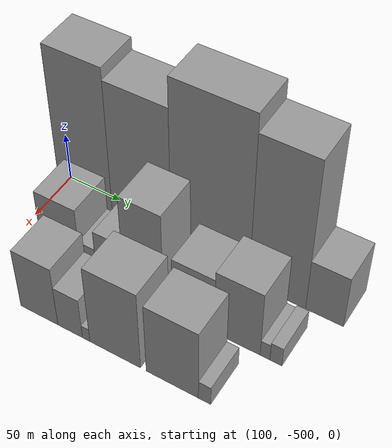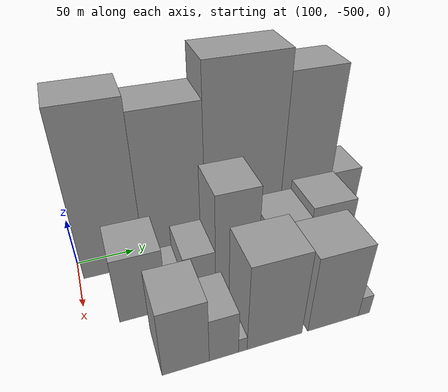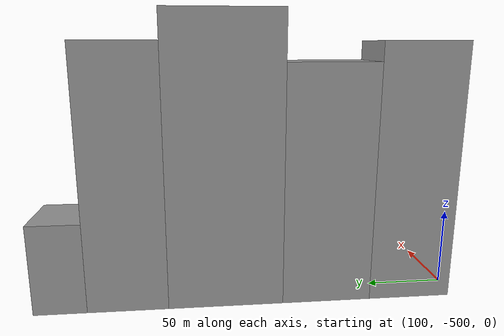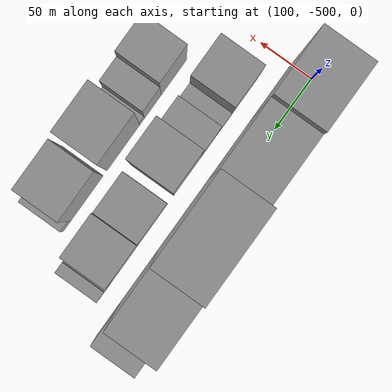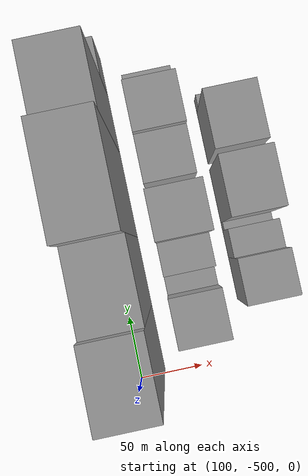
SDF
<sdf version="1.6">
 <world name="default">
  <model name="building_14">
   <static>1</static>
   <pose>100.0000 -469.8203 0 0.000000 0.000000 0.000000</pose>
   <link name="link">
    <pose>0 0 81.00 0 0 0</pose>
    <collision name="collision"><geometry><box><size>40.0000 52.8255 162.0000</size></box></geometry></collision>
    <visual name="visual">
     <cast_shadows>0</cast_shadows>
     <geometry><box><size>40.0000 52.8255 162.0000</size></box></geometry>
     <material>
      <script>
       <uri>model://grey_wall/materials/scripts</uri>
       <uri>model://grey_wall/materials/textures</uri>
       <name>vrc/grey_wall</name>
      </script>
     </material>
    </visual>
   </link>
  </model>
  <model name="building_15">
   <static>1</static>
   <pose>100.0000 -415.1986 0 0.000000 0.000000 0.000000</pose>
   <link name="link">
    <pose>0 0 75.00 0 0 0</pose>
    <collision name="collision"><geometry><box><size>40.0000 56.4179 150.0000</size></box></geometry></collision>
    <visual name="visual">
     <cast_shadows>0</cast_shadows>
     <geometry><box><size>40.0000 56.4179 150.0000</size></box></geometry>
     <material>
      <script>
       <uri>model://grey_wall/materials/scripts</uri>
       <uri>model://grey_wall/materials/textures</uri>
       <name>vrc/grey_wall</name>
      </script>
     </material>
    </visual>
   </link>
  </model>
  <model name="building_16">
   <static>1</static>
   <pose>100.0000 -351.2079 0 0.000000 0.000000 0.000000</pose>
   <link name="link">
    <pose>0 0 90.00 0 0 0</pose>
    <collision name="collision"><geometry><box><size>40.0000 71.5635 180.0000</size></box></geometry></collision>
    <visual name="visual">
     <cast_shadows>0</cast_shadows>
     <geometry><box><size>40.0000 71.5635 180.0000</size></box></geometry>
     <material>
      <script>
       <uri>model://grey_wall/materials/scripts</uri>
       <uri>model://grey_wall/materials/textures</uri>
       <name>vrc/grey_wall</name>
      </script>
     </material>
    </visual>
   </link>
  </model>
  <model name="building_17">
   <static>1</static>
   <pose>100.0000 -290.7878 0 0.000000 0.000000 0.000000</pose>
   <link name="link">
    <pose>0 0 81.00 0 0 0</pose>
    <collision name="collision"><geometry><box><size>40.0000 49.2768 162.0000</size></box></geometry></collision>
    <visual name="visual">
     <cast_shadows>0</cast_shadows>
     <geometry><box><size>40.0000 49.2768 162.0000</size></box></geometry>
     <material>
      <script>
       <uri>model://grey_wall/materials/scripts</uri>
       <uri>model://grey_wall/materials/textures</uri>
       <name>vrc/grey_wall</name>
      </script>
     </material>
    </visual>
   </link>
  </model>
  <model name="building_18">
   <static>1</static>
   <pose>100.0000 -250.1344 0 0.000000 0.000000 0.000000</pose>
   <link name="link">
    <pose>0 0 28.50 0 0 0</pose>
    <collision name="collision"><geometry><box><size>40.0000 32.0299 57.0000</size></box></geometry></collision>
    <visual name="visual">
     <cast_shadows>0</cast_shadows>
     <geometry><box><size>40.0000 32.0299 57.0000</size></box></geometry>
     <material>
      <script>
       <uri>model://grey_wall/materials/scripts</uri>
       <uri>model://grey_wall/materials/textures</uri>
       <name>vrc/grey_wall</name>
      </script>
     </material>
    </visual>
   </link>
  </model>
  <model name="building_65">
   <static>1</static>
   <pose>155.0000 -455.6357 0 0.000000 0.000000 0.000000</pose>
   <link name="link">
    <pose>0 0 33.00 0 0 0</pose>
    <collision name="collision"><geometry><box><size>40.0000 37.8774 66.0000</size></box></geometry></collision>
    <visual name="visual">
     <cast_shadows>0</cast_shadows>
     <geometry><box><size>40.0000 37.8774 66.0000</size></box></geometry>
     <material>
      <script>
       <uri>model://grey_wall/materials/scripts</uri>
       <uri>model://grey_wall/materials/textures</uri>
       <name>vrc/grey_wall</name>
      </script>
     </material>
    </visual>
   </link>
  </model>
  <model name="building_66">
   <static>1</static>
   <pose>155.0000 -429.1289 0 0.000000 0.000000 0.000000</pose>
   <link name="link">
    <pose>0 0 15.00 0 0 0</pose>
    <collision name="collision"><geometry><box><size>40.0000 15.1361 30.0000</size></box></geometry></collision>
    <visual name="visual">
     <cast_shadows>0</cast_shadows>
     <geometry><box><size>40.0000 15.1361 30.0000</size></box></geometry>
     <material>
      <script>
       <uri>model://grey_wall/materials/scripts</uri>
       <uri>model://grey_wall/materials/textures</uri>
       <name>vrc/grey_wall</name>
      </script>
     </material>
    </visual>
   </link>
  </model>
  <model name="building_67">
   <static>1</static>
   <pose>155.0000 -408.6569 0 0.000000 0.000000 0.000000</pose>
   <link name="link">
    <pose>0 0 25.50 0 0 0</pose>
    <collision name="collision"><geometry><box><size>40.0000 25.8079 51.0000</size></box></geometry></collision>
    <visual name="visual">
     <cast_shadows>0</cast_shadows>
     <geometry><box><size>40.0000 25.8079 51.0000</size></box></geometry>
     <material>
      <script>
       <uri>model://grey_wall/materials/scripts</uri>
       <uri>model://grey_wall/materials/textures</uri>
       <name>vrc/grey_wall</name>
      </script>
     </material>
    </visual>
   </link>
  </model>
  <model name="building_68">
   <static>1</static>
   <pose>155.0000 -377.7019 0 0.000000 0.000000 0.000000</pose>
   <link name="link">
    <pose>0 0 52.50 0 0 0</pose>
    <collision name="collision"><geometry><box><size>40.0000 36.1021 105.0000</size></box></geometry></collision>
    <visual name="visual">
     <cast_shadows>0</cast_shadows>
     <geometry><box><size>40.0000 36.1021 105.0000</size></box></geometry>
     <material>
      <script>
       <uri>model://grey_wall/materials/scripts</uri>
       <uri>model://grey_wall/materials/textures</uri>
       <name>vrc/grey_wall</name>
      </script>
     </material>
    </visual>
   </link>
  </model>
  <model name="building_69">
   <static>1</static>
   <pose>155.0000 -333.0927 0 0.000000 0.000000 0.000000</pose>
   <link name="link">
    <pose>0 0 31.50 0 0 0</pose>
    <collision name="collision"><geometry><box><size>40.0000 37.1162 63.0000</size></box></geometry></collision>
    <visual name="visual">
     <cast_shadows>0</cast_shadows>
     <geometry><box><size>40.0000 37.1162 63.0000</size></box></geometry>
     <material>
      <script>
       <uri>model://grey_wall/materials/scripts</uri>
       <uri>model://grey_wall/materials/textures</uri>
       <name>vrc/grey_wall</name>
      </script>
     </material>
    </visual>
   </link>
  </model>
  <model name="building_70">
   <static>1</static>
   <pose>155.0000 -295.0050 0 0.000000 0.000000 0.000000</pose>
   <link name="link">
    <pose>0 0 36.00 0 0 0</pose>
    <collision name="collision"><geometry><box><size>40.0000 39.0592 72.0000</size></box></geometry></collision>
    <visual name="visual">
     <cast_shadows>0</cast_shadows>
     <geometry><box><size>40.0000 39.0592 72.0000</size></box></geometry>
     <material>
      <script>
       <uri>model://grey_wall/materials/scripts</uri>
       <uri>model://grey_wall/materials/textures</uri>
       <name>vrc/grey_wall</name>
      </script>
     </material>
    </visual>
   </link>
  </model>
  <model name="building_71">
   <static>1</static>
   <pose>155.0000 -271.3740 0 0.000000 0.000000 0.000000</pose>
   <link name="link">
    <pose>0 0 9.00 0 0 0</pose>
    <collision name="collision"><geometry><box><size>40.0000 8.2028 18.0000</size></box></geometry></collision>
    <visual name="visual">
     <cast_shadows>0</cast_shadows>
     <geometry><box><size>40.0000 8.2028 18.0000</size></box></geometry>
     <material>
      <script>
       <uri>model://grey_wall/materials/scripts</uri>
       <uri>model://grey_wall/materials/textures</uri>
       <name>vrc/grey_wall</name>
      </script>
     </material>
    </visual>
   </link>
  </model>
  <model name="building_72">
   <static>1</static>
   <pose>155.0000 -262.2273 0 0.000000 0.000000 0.000000</pose>
   <link name="link">
    <pose>0 0 10.50 0 0 0</pose>
    <collision name="collision"><geometry><box><size>40.0000 10.0905 21.0000</size></box></geometry></collision>
    <visual name="visual">
     <cast_shadows>0</cast_shadows>
     <geometry><box><size>40.0000 10.0905 21.0000</size></box></geometry>
     <material>
      <script>
       <uri>model://grey_wall/materials/scripts</uri>
       <uri>model://grey_wall/materials/textures</uri>
       <name>vrc/grey_wall</name>
      </script>
     </material>
    </visual>
   </link>
  </model>
  <model name="building_117">
   <static>1</static>
   <pose>210.0000 -436.3825 0 0.000000 0.000000 0.000000</pose>
   <link name="link">
    <pose>0 0 33.00 0 0 0</pose>
    <collision name="collision"><geometry><box><size>40.0000 34.8083 66.0000</size></box></geometry></collision>
    <visual name="visual">
     <cast_shadows>0</cast_shadows>
     <geometry><box><size>40.0000 34.8083 66.0000</size></box></geometry>
     <material>
      <script>
       <uri>model://grey_wall/materials/scripts</uri>
       <uri>model://grey_wall/materials/textures</uri>
       <name>vrc/grey_wall</name>
      </script>
     </material>
    </visual>
   </link>
  </model>
  <model name="building_118">
   <static>1</static>
   <pose>210.0000 -407.7210 0 0.000000 0.000000 0.000000</pose>
   <link name="link">
    <pose>0 0 22.50 0 0 0</pose>
    <collision name="collision"><geometry><box><size>40.0000 22.5147 45.0000</size></box></geometry></collision>
    <visual name="visual">
     <cast_shadows>0</cast_shadows>
     <geometry><box><size>40.0000 22.5147 45.0000</size></box></geometry>
     <material>
      <script>
       <uri>model://grey_wall/materials/scripts</uri>
       <uri>model://grey_wall/materials/textures</uri>
       <name>vrc/grey_wall</name>
      </script>
     </material>
    </visual>
   </link>
  </model>
  <model name="building_119">
   <static>1</static>
   <pose>210.0000 -393.0815 0 0.000000 0.000000 0.000000</pose>
   <link name="link">
    <pose>0 0 7.50 0 0 0</pose>
    <collision name="collision"><geometry><box><size>40.0000 6.7642 15.0000</size></box></geometry></collision>
    <visual name="visual">
     <cast_shadows>0</cast_shadows>
     <geometry><box><size>40.0000 6.7642 15.0000</size></box></geometry>
     <material>
      <script>
       <uri>model://grey_wall/materials/scripts</uri>
       <uri>model://grey_wall/materials/textures</uri>
       <name>vrc/grey_wall</name>
      </script>
     </material>
    </visual>
   </link>
  </model>
  <model name="building_120">
   <static>1</static>
   <pose>210.0000 -367.2311 0 0.000000 0.000000 0.000000</pose>
   <link name="link">
    <pose>0 0 43.50 0 0 0</pose>
    <collision name="collision"><geometry><box><size>40.0000 44.9367 87.0000</size></box></geometry></collision>
    <visual name="visual">
     <cast_shadows>0</cast_shadows>
     <geometry><box><size>40.0000 44.9367 87.0000</size></box></geometry>
     <material>
      <script>
       <uri>model://grey_wall/materials/scripts</uri>
       <uri>model://grey_wall/materials/textures</uri>
       <name>vrc/grey_wall</name>
      </script>
     </material>
    </visual>
   </link>
  </model>
  <model name="building_121">
   <static>1</static>
   <pose>210.0000 -317.6143 0 0.000000 0.000000 0.000000</pose>
   <link name="link">
    <pose>0 0 39.00 0 0 0</pose>
    <collision name="collision"><geometry><box><size>40.0000 44.2969 78.0000</size></box></geometry></collision>
    <visual name="visual">
     <cast_shadows>0</cast_shadows>
     <geometry><box><size>40.0000 44.2969 78.0000</size></box></geometry>
     <material>
      <script>
       <uri>model://grey_wall/materials/scripts</uri>
       <uri>model://grey_wall/materials/textures</uri>
       <name>vrc/grey_wall</name>
      </script>
     </material>
    </visual>
   </link>
  </model>
  <model name="building_122">
   <static>1</static>
   <pose>210.0000 -290.3546 0 0.000000 0.000000 0.000000</pose>
   <link name="link">
    <pose>0 0 10.50 0 0 0</pose>
    <collision name="collision"><geometry><box><size>40.0000 10.2226 21.0000</size></box></geometry></collision>
    <visual name="visual">
     <cast_shadows>0</cast_shadows>
     <geometry><box><size>40.0000 10.2226 21.0000</size></box></geometry>
     <material>
      <script>
       <uri>model://grey_wall/materials/scripts</uri>
       <uri>model://grey_wall/materials/textures</uri>
       <name>vrc/grey_wall</name>
      </script>
     </material>
    </visual>
   </link>
  </model>
 </world>
</sdf>
